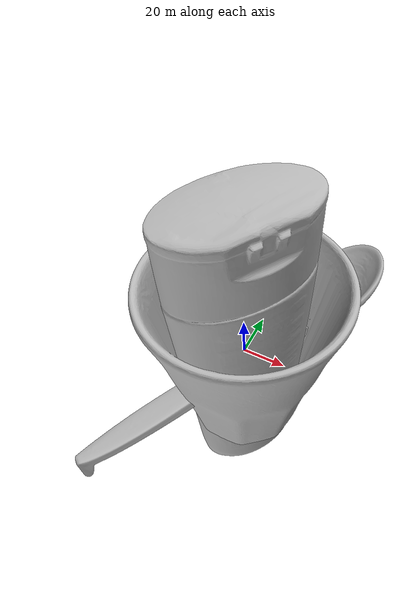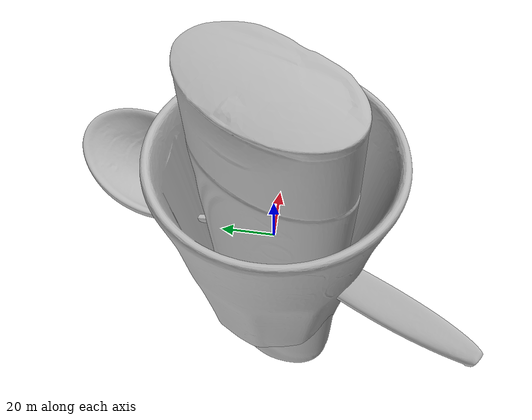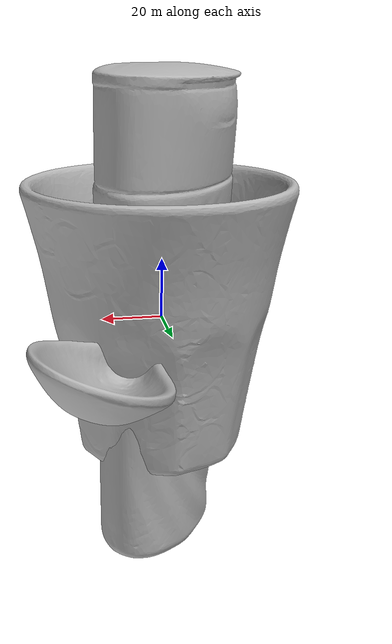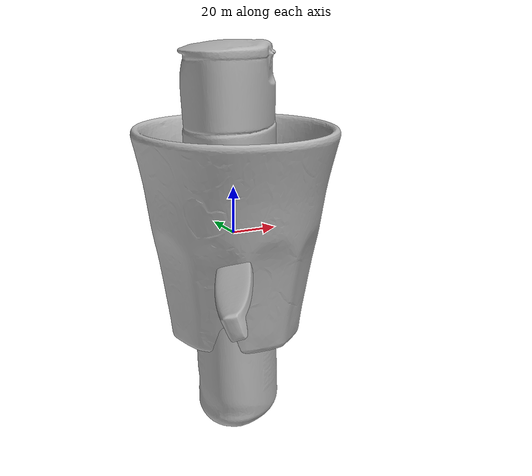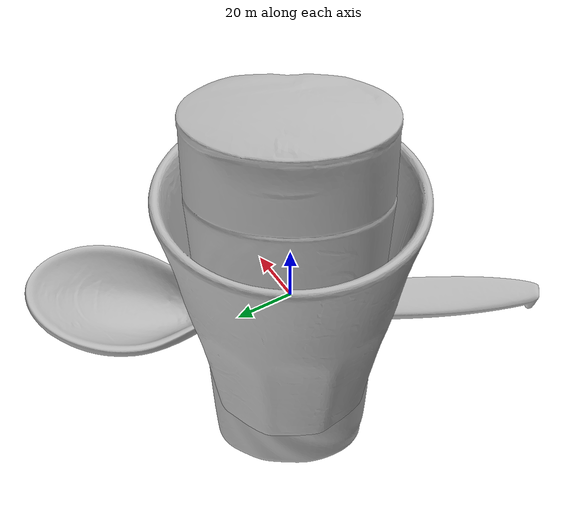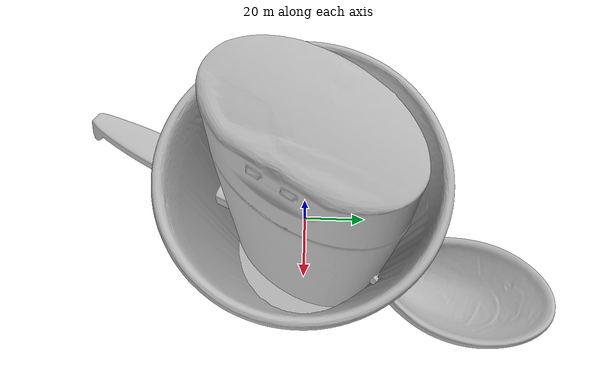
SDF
<sdf version="1.4">
 <world name="default">
  <light name="light1" type="point">
   <pose>0 0 1 0 0 0</pose>
   <diffuse>3 3 3 1</diffuse>
   <specular>3 3 3 1</specular>
  </light>
  <light name="light2" type="point">
   <pose>0 0.5 2 0 0 0</pose>
   <diffuse>1 1 1 1</diffuse>
   <specular>1 1 1 1</specular>
  </light>
  <light name="light3" type="point">
   <pose>0 0.5 2 0 0 0</pose>
   <diffuse>3 3 3 1</diffuse>
   <specular>3 3 3 1</specular>
  </light>
  <scene><ambient>0.7 0.7 0.7</ambient></scene>
  <model name="bottle1">
   <link name="link_bottle1">
    <collision name="default">
     <geometry>
      <mesh><uri>model://pure_zhen/collision_meshes/collision.obj</uri><scale>1.0 1.0 1.0</scale></mesh>
     </geometry>
     <surface>
      <friction><ode><mu>0.5</mu><mu2>0.5</mu2></ode></friction>
      <contact><ode><max_vel>0</max_vel><min_depth>0.0001</min_depth><kp>1e8</kp></ode></contact>
     </surface>
    </collision>
    <visual name="default">
     <geometry>
      <mesh><uri>model://pure_zhen/visual_meshes/visual.dae</uri><scale>1.0 1.0 1.0</scale></mesh>
     </geometry>
    </visual>
    <inertial>
     <mass>0.21128538250923157</mass>
     <pose>-8.582300506532192e-05 0.0002452346670906991 -0.0015797390369698405 -0.027642443229877835 0.005619248866174896 0.3057200614584077</pose>
     <inertia>
      <ixx>0.00063332287</ixx>
      <iyy>0.00063348823</iyy>
      <izz>6.6904315e-05</izz>
      <ixy>0</ixy>
      <ixz>0</ixz>
      <iyz>0</iyz>
     </inertia>
    </inertial>
   </link>
   <pose>-0.05836164951324463 0.2760096788406372 0.09194828569889069 0.01947126525044722 -0.01609917410400572 0.2230975697953439</pose>
  </model>
  <model name="bottle2">
   <link name="link_bottle2">
    <collision name="default">
     <geometry>
      <mesh><uri>model://conditioner/collision_meshes/collision.obj</uri><scale>1.0 1.0 1.0</scale></mesh>
     </geometry>
     <surface>
      <friction><ode><mu>0.5</mu><mu2>0.5</mu2></ode></friction>
      <contact><ode><max_vel>0</max_vel><min_depth>0.0001</min_depth><kp>1e8</kp></ode></contact>
     </surface>
    </collision>
    <visual name="default">
     <geometry>
      <mesh><uri>model://conditioner/visual_meshes/visual.dae</uri><scale>1.0 1.0 1.0</scale></mesh>
     </geometry>
    </visual>
    <inertial>
     <mass>0.3611464500427246</mass>
     <pose>-0.00055994390277192 -0.0001729748910292983 0.004359682556241751 -0.005038374424784669 0.01530604350153207 0.015072341368129788</pose>
     <inertia>
      <ixx>0.00078562286</ixx>
      <iyy>0.0008415716</iyy>
      <izz>0.00012113213</izz>
      <ixy>0</ixy>
      <ixz>0</ixz>
      <iyz>0</iyz>
     </inertia>
    </inertial>
   </link>
   <pose>-0.0672239288687706 -0.3613176643848419 0.08122974634170532 0.03689198968178313 -0.015660209175734376 -2.151611597075389</pose>
  </model>
  <model name="silverware1">
   <link name="link_silverware1">
    <collision name="default">
     <geometry>
      <mesh><uri>model://doraemon_spoon/collision_meshes/collision.obj</uri><scale>1.0 1.0 1.0</scale></mesh>
     </geometry>
     <surface>
      <friction><ode><mu>0.5</mu><mu2>0.5</mu2></ode></friction>
      <contact><ode><max_vel>0</max_vel><min_depth>0.0001</min_depth><kp>1e8</kp></ode></contact>
     </surface>
    </collision>
    <visual name="default">
     <geometry>
      <mesh><uri>model://doraemon_spoon/visual_meshes/visual.dae</uri><scale>1.0 1.0 1.0</scale></mesh>
     </geometry>
    </visual>
    <inertial>
     <mass>0.02099660225212574</mass>
     <pose>-0.02216508239507675 -0.0006374581134878099 -0.003332545980811119 -0.009147162014623967 0.07380421234862718 -0.01412382746948542</pose>
     <inertia>
      <ixx>1.6446534e-06</ixx>
      <iyy>4.671061e-05</iyy>
      <izz>4.7504738e-05</izz>
      <ixy>0</ixy>
      <ixz>0</ixz>
      <iyz>0</iyz>
     </inertia>
    </inertial>
   </link>
   <pose>0.07761510461568832 -0.11972400546073914 0.014739340171217918 0.27880083237789377 -0.01033446237611365 -2.022432142549742</pose>
  </model>
  <model name="stationery1">
   <link name="link_stationery1">
    <collision name="default">
     <geometry>
      <mesh><uri>model://correction_fuid/collision_meshes/collision.obj</uri><scale>1.0 1.0 1.0</scale></mesh>
     </geometry>
     <surface>
      <friction><ode><mu>0.5</mu><mu2>0.5</mu2></ode></friction>
      <contact><ode><max_vel>0</max_vel><min_depth>0.0001</min_depth><kp>1e8</kp></ode></contact>
     </surface>
    </collision>
    <visual name="default">
     <geometry>
      <mesh><uri>model://correction_fuid/visual_meshes/visual.dae</uri><scale>1.0 1.0 1.0</scale></mesh>
     </geometry>
    </visual>
    <inertial>
     <mass>0.046645622700452805</mass>
     <pose>-0.00012557735317386687 -0.0009722909890115261 -0.001618212671019137 -0.010846607840907904 0.019488357502694276 -0.015992455488392</pose>
     <inertia>
      <ixx>4.5177083e-05</ixx>
      <iyy>2.7341744e-06</iyy>
      <izz>4.635291e-05</izz>
      <ixy>0</ixy>
      <ixz>0</ixz>
      <iyz>0</iyz>
     </inertia>
    </inertial>
   </link>
   <pose>-0.007599668577313423 0.21909300982952118 0.009663970209658146 -0.006633273339990119 -0.026591029317053566 1.7212309847007121</pose>
  </model>
  <model name="bowl1">
   <link name="link_bowl1">
    <collision name="default">
     <geometry>
      <mesh><uri>model://doraemon_bowl/collision_meshes/collision.obj</uri><scale>1.0 1.0 1.0</scale></mesh>
     </geometry>
     <surface>
      <friction><ode><mu>0.5</mu><mu2>0.5</mu2></ode></friction>
      <contact><ode><max_vel>0</max_vel><min_depth>0.0001</min_depth><kp>1e8</kp></ode></contact>
     </surface>
    </collision>
    <visual name="default">
     <geometry>
      <mesh><uri>model://doraemon_bowl/visual_meshes/visual.dae</uri><scale>1.0 1.0 1.0</scale></mesh>
     </geometry>
    </visual>
    <inertial>
     <mass>0.11811670660972595</mass>
     <pose>-0.014629551209509373 0.0004857121384702623 -0.0020864885300397873 -0.00509396228069995 -0.10568398533611668 -0.02642645986873745</pose>
     <inertia>
      <ixx>0.00016378764</ixx>
      <iyy>0.00021554313</iyy>
      <izz>0.00031711452</izz>
      <ixy>0</ixy>
      <ixz>0</ixz>
      <iyz>0</iyz>
     </inertia>
    </inertial>
   </link>
   <pose>-0.03706320747733116 -0.14957474172115326 0.025933973491191864 0.004010199201658654 0.01808404652308407 -1.4565176538466587</pose>
  </model>
  <model name="cup1">
   <link name="link_cup1">
    <collision name="default">
     <geometry>
      <mesh><uri>model://hello_kitty_cup/collision_meshes/collision.obj</uri><scale>1.0 1.0 1.0</scale></mesh>
     </geometry>
     <surface>
      <friction><ode><mu>0.5</mu><mu2>0.5</mu2></ode></friction>
      <contact><ode><max_vel>0</max_vel><min_depth>0.0001</min_depth><kp>1e8</kp></ode></contact>
     </surface>
    </collision>
    <visual name="default">
     <geometry>
      <mesh><uri>model://hello_kitty_cup/visual_meshes/visual.dae</uri><scale>1.0 1.0 1.0</scale></mesh>
     </geometry>
    </visual>
    <inertial>
     <mass>0.06522195786237717</mass>
     <pose>0.00027251147548668087 0.0002795039035845548 0.003044978016987443 0.05779148941225366 0.007964866585370347 -0.020452001862605422</pose>
     <inertia>
      <ixx>8.981858e-05</ixx>
      <iyy>9.081978e-05</iyy>
      <izz>7.573251e-05</izz>
      <ixy>0</ixy>
      <ixz>0</ixz>
      <iyz>0</iyz>
     </inertia>
    </inertial>
   </link>
   <pose>0.2385243922472 -0.35604220628738403 0.046216268092393875 -0.0058783415496371045 0.010796104732925079 -0.9325748367504951</pose>
  </model>
  <model name="plate1">
   <link name="link_plate1">
    <collision name="default">
     <geometry>
      <mesh><uri>model://hello_kitty_plate/collision_meshes/collision.obj</uri><scale>1.0 1.0 1.0</scale></mesh>
     </geometry>
     <surface>
      <friction><ode><mu>0.5</mu><mu2>0.5</mu2></ode></friction>
      <contact><ode><max_vel>0</max_vel><min_depth>0.0001</min_depth><kp>1e8</kp></ode></contact>
     </surface>
    </collision>
    <visual name="default">
     <geometry>
      <mesh><uri>model://hello_kitty_plate/visual_meshes/visual.dae</uri><scale>1.0 1.0 1.0</scale></mesh>
     </geometry>
    </visual>
    <inertial>
     <mass>0.08260300010442734</mass>
     <pose>0.0073142931796610355 0.0002893725468311459 -0.0027947169728577137 -0.00010432002488368626 -0.007054440417891238 -0.014449022362072891</pose>
     <inertia>
      <ixx>0.0001592833</ixx>
      <iyy>0.00030061565</iyy>
      <izz>0.0004564546</izz>
      <ixy>0</ixy>
      <ixz>0</ixz>
      <iyz>0</iyz>
     </inertia>
    </inertial>
   </link>
   <pose>0.004527969751507044 -0.25140878558158875 0.03658803924918175 0.5301263304420099 0.009004235959932844 0.3520877624522877</pose>
  </model>
  <model name="box4">
   <link name="link_box4">
    <collision name="default">
     <geometry>
      <mesh><uri>model://wooden_puzzle1/collision_meshes/collision.obj</uri><scale>1.0 1.0 1.0</scale></mesh>
     </geometry>
     <surface>
      <friction><ode><mu>0.5</mu><mu2>0.5</mu2></ode></friction>
      <contact><ode><max_vel>0</max_vel><min_depth>0.0001</min_depth><kp>1e8</kp></ode></contact>
     </surface>
    </collision>
    <visual name="default">
     <geometry>
      <mesh><uri>model://wooden_puzzle1/visual_meshes/visual.dae</uri><scale>1.0 1.0 1.0</scale></mesh>
     </geometry>
    </visual>
    <inertial>
     <mass>0.034562814980745316</mass>
     <pose>-0.0001735068071866408 7.97226166469045e-05 -9.191555000143126e-05 -0.07784459827727222 -0.2636103773563706 -0.5528705263726328</pose>
     <inertia>
      <ixx>6.5210584e-06</ixx>
      <iyy>6.395525e-06</iyy>
      <izz>6.471823e-06</izz>
      <ixy>0</ixy>
      <ixz>0</ixz>
      <iyz>0</iyz>
     </inertia>
    </inertial>
   </link>
   <pose>-0.015653351321816444 0.255060613155365 0.016802603378891945 0.010459931104543994 -0.009468407255480172 -0.7722336116194533</pose>
  </model>
  <physics type="ode">
   <max_contacts>50</max_contacts>
   <ode>
    <solver><type>quick</type><iters>75</iters></solver>
    <constraints>
     <contact_max_correcting_vel>0</contact_max_correcting_vel>
     <contact_surface_layer>0</contact_surface_layer>
    </constraints>
   </ode>
  </physics>
 </world>
</sdf>
